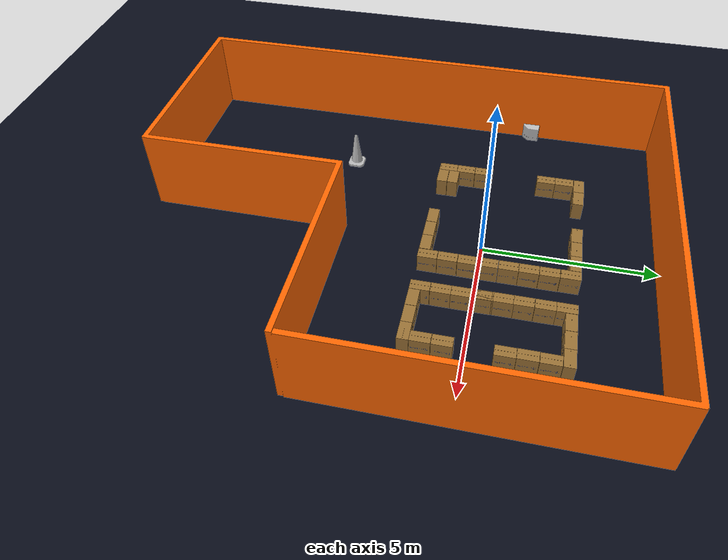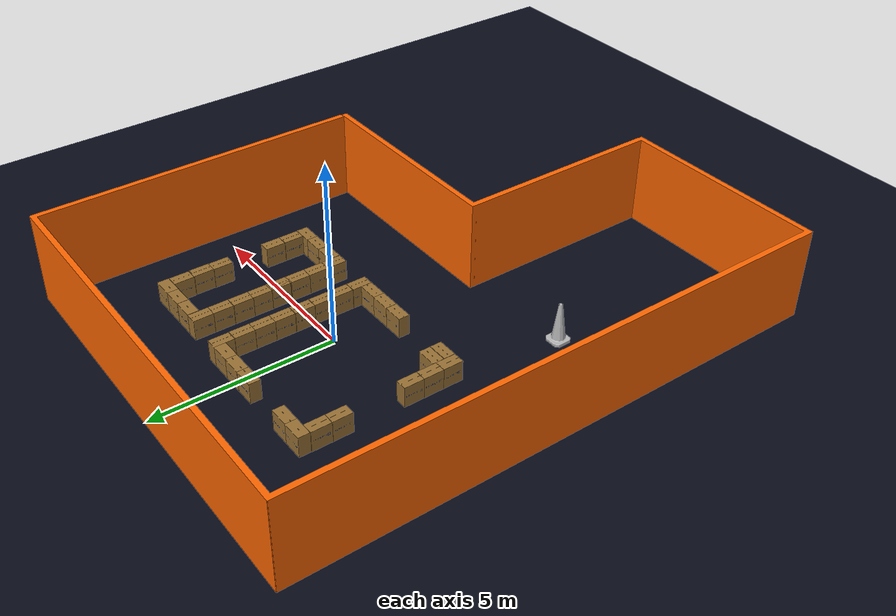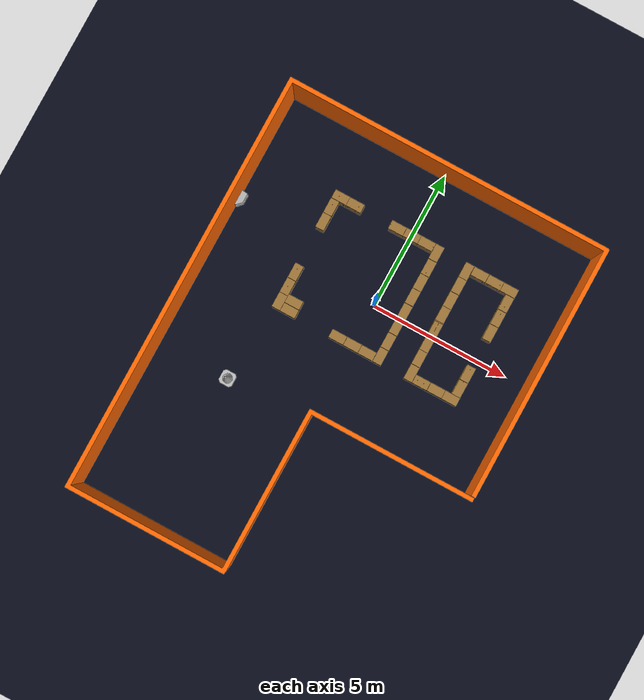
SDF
<sdf version='1.9'>
  <world name='default'>
    <physics name="1ms" type="ode">
      <max_step_size>0.003</max_step_size>
      <real_time_update_rate>1000.0</real_time_update_rate>
      <real_time_factor>1.0</real_time_factor>
    </physics>
    <plugin name='gz::sim::systems::Physics' filename='gz-sim-physics-system'/>
    <plugin name='gz::sim::systems::UserCommands' filename='gz-sim-user-commands-system'/>
    <plugin name='gz::sim::systems::SceneBroadcaster' filename='gz-sim-scene-broadcaster-system'/>
    <plugin name='gz::sim::systems::Contact' filename='gz-sim-contact-system'/>
    <gravity>0 0 -9.8</gravity>
    <magnetic_field>6e-06 2.3e-05 -4.2e-05</magnetic_field>
    <atmosphere type='adiabatic'/>
    <scene>
      <ambient>0.4 0.4 0.4 1</ambient>
      <background>0.7 0.7 0.7 1</background>
      <shadows>true</shadows>
    </scene>
    <audio>
      <device>default</device>
    </audio>
    <model name='ground_plane'>
      <static>true</static>
      <link name='link'>
        <collision name='collision'>
          <geometry>
            <plane>
              <normal>0 0 1</normal>
              <size>100 100</size>
            </plane>
          </geometry>
          <surface>
            <friction>
              <ode/>
            </friction>
            <bounce/>
            <contact/>
          </surface>
        </collision>
        <visual name='visual'>
          <geometry>
            <plane>
              <normal>0 0 1</normal>
              <size>100 100</size>
            </plane>
          </geometry>
          <material>
              <ambient>0.031 0.043 0.1 1</ambient>
              <diffuse>0.031 0.043 0.1 1</diffuse>
              <specular>0.031 0.043 0.1 1</specular>
          </material>
        </visual>
        <pose>0 0 0 0 -0 0</pose>
        <inertial>
          <pose>0 0 0 0 -0 0</pose>
          <mass>1</mass>
          <inertia>
            <ixx>1</ixx>
            <ixy>0</ixy>
            <ixz>0</ixz>
            <iyy>1</iyy>
            <iyz>0</iyz>
            <izz>1</izz>
          </inertia>
        </inertial>
        <enable_wind>false</enable_wind>
      </link>
      <pose>0 0 0 0 -0 0</pose>
      <self_collide>false</self_collide>
    </model>

    <model name='construction_cone'>
      <include>
            <uri>model://construction_cone</uri>
      </include>
      <pose>-3.16254 -4.5019 -0.000817 0 -0 0</pose>
      <static>true</static>
    </model>

    <model name='neobotix_box'>
      <include>
            <uri>model://neo_office_box</uri>
      </include>
      <pose>3.8441 2.13819 0.289901 0 -0 0</pose>

    </model>
    <model name='neobotix_box_2'>
      <include>
            <uri>model://neo_office_box</uri>
    </include>
      <pose>3.8441 1.0174 0.2899 0 -0 0</pose>

    </model>
    <model name='neobotix_box_3'>
      <include>
            <uri>model://neo_office_box</uri>
    </include>
      <pose>3.72859 2.58 0.294325 0 -0 1.57</pose>

    </model>
    <model name='neobotix_box_3_1'>
      <include>
            <uri>model://neo_office_box</uri>
    </include>
      <pose>3.83946 -0.539023 0.2899 0 -0 0</pose>

    </model>
    <model name='neobotix_box_3_1_1'>
      <include>
            <uri>model://neo_office_box</uri>
    </include>
      <pose>3.83835 -1.10136 0.2899 0 -0 0</pose>

    </model>
    <model name='neobotix_box_3_2'>
      <include>
            <uri>model://neo_office_box</uri>
    </include>
      <pose>3.17414 2.58 0.294325 0 -0 1.57</pose>

    </model>
    <model name='neobotix_box_3_2_1'>
      <include>
            <uri>model://neo_office_box</uri>
    </include>
      <pose>2.61416 2.57785 0.294325 0 -0 1.57</pose>

    </model>
    <model name='neobotix_box_3_2_2'>
      <include>
            <uri>model://neo_office_box</uri>
    </include>
      <pose>3.72429 -1.53119 0.294325 0 -0 1.57</pose>

    </model>
    <model name='neobotix_box_3_2_2_1'>
      <include>
            <uri>model://neo_office_box</uri>
      </include>
      <pose>3.17712 -1.52963 0.294325 0 -0 1.57</pose>

    </model>
    <model name='neobotix_box_3_2_2_1_1'>
      <include>
            <uri>model://neo_office_box</uri>
    </include>
      <pose>3.17712 -1.52963 0.294325 0 -0 1.57</pose>

    </model>
    <model name='neobotix_box_3_2_2_1_1_1'>
      <include>
            <uri>model://neo_office_box</uri>
    </include>
      <pose>2.61748 -1.53101 0.294325 0 -0 1.57</pose>

    </model>

    <model name='neobotix_box_3_1_1_2'>
      <include>
            <uri>model://neo_office_box</uri>
    </include>
      <pose>2.17688 -0.850632 0.2899 0 -0 0</pose>
    </model>

    <model name='neobotix_box_3_1_1_3'>
      <include>
            <uri>model://neo_office_box</uri>
    </include>
      <pose>2.17646 -0.303069 0.2899 0 -0 0</pose>
    </model>

    <model name='neobotix_box_3_1_1_4'>
      <include>
            <uri>model://neo_office_box</uri>
    </include>
      <pose>2.17697 0.234524 0.2899 0 -0 0</pose>
    </model>

    <model name='neobotix_box_3_1_1_4_1'>
      <include>
            <uri>model://neo_office_box</uri>
    </include>
      <pose>2.17187 0.271358 0.2899 0 -0 0</pose>
    </model>

    <model name='neobotix_box_3_1_1_4_1_1'>
      <include>
            <uri>model://neo_office_box</uri>
    </include>
      <pose>2.16949 0.815161 0.2899 0 -0 0</pose>
    </model>

    <model name='neobotix_box_3_1_1_4_1_2'>
      <include>
            <uri>model://neo_office_box</uri>
    </include>
      <pose>2.16867 1.34652 0.2899 0 -0 0</pose>

    </model>
    <model name='neobotix_box_3_1_1_4_1_2_1'>
      <include>
            <uri>model://neo_office_box</uri>
    </include>
      <pose>2.16985 1.90775 0.2899 0 -0 0</pose>

    </model>
    <model name='neobotix_box_3_1_1_4_1_2_2'>
      <include>
            <uri>model://neo_office_box</uri>
    </include>
      <pose>2.16833 2.45961 0.2899 0 -0 0</pose>

    </model>

    <model name='neobotix_box_3_1_1_1_1_1'>
      <include>
            <uri>model://neo_office_box</uri>
    </include>
      <pose>1.00216 -0.851081 0.2899 0 -0 0</pose>

    </model>
    <model name='neobotix_box_3_1_1_1_1_1_1'>
      <include>
            <uri>model://neo_office_box</uri>
    </include>
      <pose>1.00471 -0.287494 0.2899 0 -0 0</pose>

    </model>
    <model name='neobotix_box_3_1_1_1_1_1_1_1'>
      <include>
            <uri>model://neo_office_box</uri>
    </include>
      <pose>1.00198 0.272766 0.2899 0 -0 0</pose>

    </model>
    <model name='neobotix_box_3_1_1_1_1_1_1_1_2'>
      <include>
            <uri>model://neo_office_box</uri>
    </include>
      <pose>1.00198 1.39551 0.2899 0 -0 0</pose>

    </model>
    <model name='neobotix_box_3_1_1_1_1_1_1_1_2_1'>
      <include>
            <uri>model://neo_office_box</uri>
    </include>
      <pose>1.00198 0.838156 0.2899 0 -0 0</pose>

    </model>
    <model name='neobotix_box_3_1_1_1_1_1_1_1_2_2'>
      <include>
            <uri>model://neo_office_box</uri>
    </include>
      <pose>1.00149 1.95419 0.2899 0 -0 0</pose>

    </model>
    <model name='neobotix_box_3_1_1_1_1_1_1_1_2_2_1'>
      <include>
            <uri>model://neo_office_box</uri>
    </include>
      <pose>0.993277 2.5178 0.2899 0 -0 0</pose>

    </model>

    <model name='neobotix_box_3_2_1_1_1'>
      <include>
            <uri>model://neo_office_box</uri>
    </include>
      <pose>0.004919 2.63842 0.294325 0 -0 1.57</pose>

    </model>
    <model name='neobotix_box_3_2_1_1_1_1'>
      <include>
            <uri>model://neo_office_box</uri>
    </include>
      <pose>-2.15716 2.63489 0.294325 0 -0 1.57</pose>

    </model>

    <model name='neobotix_box_3_2_1_1_2_1'>
      <include>
            <uri>model://neo_office_box</uri>
    </include>
      <pose>0.001747 -1.52761 0.294325 0 -0 1.57</pose>

    </model>
    <model name='neobotix_box_3_2_1_1_2_1_1'>
      <include>
            <uri>model://neo_office_box</uri>
    </include>
      <pose>-2.4008 -1.20148 0.294325 0 -0 1.57</pose>

    </model>
    <model name='neobotix_box_3_2_1_1_2_1_1_1'>
      <include>
            <uri>model://neo_office_box</uri>
    </include>
      <pose>-0.557713 -1.52582 0.294325 0 -0 1.57</pose>

    </model>
    <model name='neobotix_box_3_2_1_1_2_1_1_2'>
      <include>
            <uri>model://neo_office_box</uri>
    </include>
      <pose>-2.39783 -1.52546 0.294325 0 -0 1.57</pose>

    </model>
    <model name='neobotix_box_3_1_1_1_1_2'>
      <include>
            <uri>model://neo_office_box</uri>
    </include>
      <pose>-2.83415 1.63907 0.2899 0 -0 0</pose>

    </model>
    <model name='neobotix_box_3_1_1_1_1_2_1'>
      <include>
            <uri>model://neo_office_box</uri>
    </include>
      <pose>-2.83415 -1.40321 0.2899 0 -0 0</pose>

    </model>
    <model name='neobotix_box_3_1_1_1_1_2_2'>
      <include>
            <uri>model://neo_office_box</uri>
    </include>
      <pose>-2.83415 -0.848452 0.2899 0 -0 0</pose>

    </model>
    <model name='neobotix_box_3_2_1_1_1_1_1'>
      <include>
            <uri>model://neo_office_box</uri>
    </include>
      <pose>-0.553211 2.6336 0.294325 0 -0 1.57</pose>

    </model>
    <model name='neobotix_box_3_2_1_1_1_1_2'>
      <include>
            <uri>model://neo_office_box</uri>
    </include>
      <pose>-2.70912 2.63532 0.294325 0 -0 1.57</pose>

    </model>
    <model name='neobotix_box_3_1_1_1_1_2_3'>
      <include>
            <uri>model://neo_office_box</uri>
    </include>
      <pose>-2.83415 -0.288183 0.2899 0 -0 0</pose>

    </model>
    <model name='neobotix_box_3_1_1_1_1_2_4'>
      <include>
            <uri>model://neo_office_box</uri>
    </include>
      <pose>-2.83415 2.19461 0.2899 0 -0 0</pose>

    </model>
    <model name='neobotix_box_3_2_1_1_2_2'>
      <include>
            <uri>model://neo_office_box</uri>
    </include>
      <pose>0.556968 -1.52968 0.294325 0 -0 1.57</pose>

    </model>
    <model name='neobotix_box_3_1_1_1_1_3'>
      <include>
            <uri>model://neo_office_box</uri>
    </include>
      <pose>1 -1.4122 0.2899 0 -0 0</pose>

    </model>
    <model name='neobotix_box_3_1_1_1_2'>
      <include>
            <uri>model://neo_office_box</uri>
    </include>
      <pose>2.17786 -1.4122 0.2899 0 -0 0</pose>

    </model>
    <model name='neobotix_box_3_2_1_1_3'>
      <include>
            <uri>model://neo_office_box</uri>
    </include>
      <pose>0.556752 2.63727 0.294325 0 -0 1.57</pose>
    </model>

    <model name='neobotix_box_1_1'>
      <include>
            <uri>model://neo_office_box</uri>
      </include>
      <pose>3.84411 1.57505 0.300478 0 -0 0</pose>
    </model>

  <model name="neo_workshop_walls">
    <static>true</static>
    <link name="wall_link">
      <pose>3 -4.04 0 0 0 0</pose>
      <visual name="wall_visual">
        <pose>0 0 0 0 -0 0</pose>
        <geometry>
          <mesh>
            <scale>1 1 1</scale>
            <uri>model://neo_workshop_walls/meshes/walls.dae</uri>
          </mesh>
        </geometry>
        <material>
            <ambient>1.0 0.4 0 1</ambient>
            <diffuse>1.0 0.4 0 1</diffuse>
            <specular>1.0 0.6 0 1</specular>
        </material>
      </visual>
      <collision name="wall_collision">
        <geometry>
          <mesh>
          <scale>1 1 1</scale>
            <uri>model://neo_workshop_walls/meshes/walls.dae</uri>
          </mesh>
        </geometry>
        <pose>0 0 0 0 0 0</pose>
        <max_contacts>10</max_contacts>
        <surface>
          <contact>
            <ode/>
          </contact>
          <bounce/>
          <friction>
            <torsional>
              <ode/>
            </torsional>
            <ode/>
          </friction>
        </surface>
      </collision>
      <self_collide>false</self_collide>
      <enable_wind>false</enable_wind>
      <kinematic>false</kinematic>
      <inertial>
        <pose>0 0 0 0 0 0</pose>
        <mass>1</mass>
        <inertia>
          <ixx>1</ixx>
          <ixy>0</ixy>
          <ixz>0</ixz>
          <iyy>1</iyy>
          <iyz>0</iyz>
          <izz>1</izz>
        </inertia>
      </inertial>
    </link>
  </model>
    <model name='wallbox'>
      <link name='link'>
        <visual name='visual'>
          <geometry>
            <mesh>
              <uri>model://neo_wall_box/meshes/wallbox.dae</uri>
            </mesh>
          </geometry>
        </visual>
        <enable_wind>false</enable_wind>
      </link>
      <pose>-5.5157999992370605 1.0800000429153442 0.0099999997764825821 0 0 0</pose>
      <static>true</static>
    </model>

    <light name='sun' type='directional'>
      <pose>0 0 10 0 -0 0</pose>
      <cast_shadows>true</cast_shadows>
      <intensity>1.5</intensity>
      <direction>-0.5 0.5 -1</direction>
      <diffuse>0.8 0.8 0.8 1</diffuse>
      <specular>0.2 0.2 0.2 1</specular>
      <attenuation>
        <range>1000</range>
        <linear>0.01</linear>
        <constant>0.90000000000000002</constant>
        <quadratic>0.001</quadratic>
      </attenuation>
      <spot>
        <inner_angle>0</inner_angle>
        <outer_angle>0</outer_angle>
        <falloff>0</falloff>
      </spot>
    </light>
  </world>
</sdf>

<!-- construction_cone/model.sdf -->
<sdf version="1.6">
  <model name="construction_cone">
    <link name="link">
      <collision name="collision">
        <geometry>
          <mesh>
            <scale>1 1 1</scale>
            <uri>meshes/construction_cone.dae</uri>
          </mesh>
        </geometry>
      </collision>
      <visual name="visual">
        <geometry>
          <mesh>
            <scale>1 1 1</scale>
            <uri>meshes/construction_cone.dae</uri>
          </mesh>
        </geometry>
      </visual>
    </link>
  </model>
</sdf>

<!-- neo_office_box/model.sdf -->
<sdf version='1.6'>
  <model name='neobotix_box'>
    <link name='link_1'>
	    <inertial>
        <mass>2</mass>
        <pose frame=''>0 0 0 0 0 0</pose>
        <inertia>
          <ixx>0.1</ixx>
          <ixy>0</ixy>
          <ixz>0</ixz>
          <iyy>0.1</iyy>
          <iyz>0</iyz>
          <izz>0.1</izz>
        </inertia>
      </inertial>
      <pose frame=''>0 0 0 0 -0 0</pose>
      <visual name='visual'>
        <geometry>
          <mesh>
            <uri>meshes/model.dae</uri>
          </mesh>
        </geometry>
		    <meta><layer>1</layer></meta>
      </visual>
      <collision name='collision_0'>
        <laser_retro>0</laser_retro>
        <max_contacts>1</max_contacts>
        <pose frame=''>0 0 0 0 -0 0</pose>
        <geometry>
          <mesh>
            <uri>meshes/model.dae</uri>
          </mesh>
        </geometry>
		    <surface>
          <friction>
            <ode>
              <mu>0.04</mu>
              <mu2>0.04</mu2>
              <fdir1>0 0 0</fdir1>
              <slip1>0</slip1>
              <slip2>0</slip2>
            </ode>
            <torsional>
              <coefficient>1</coefficient>
              <patch_radius>0</patch_radius>
              <surface_radius>0</surface_radius>
              <use_patch_radius>0</use_patch_radius>
              <ode>
                <slip>0</slip>
              </ode>
            </torsional>
          </friction>
        </surface>
      </collision>
    </link>
    <static>true</static>
  </model>
</sdf>
